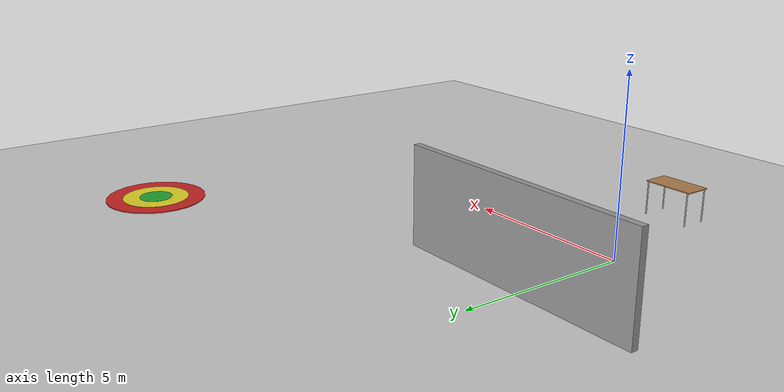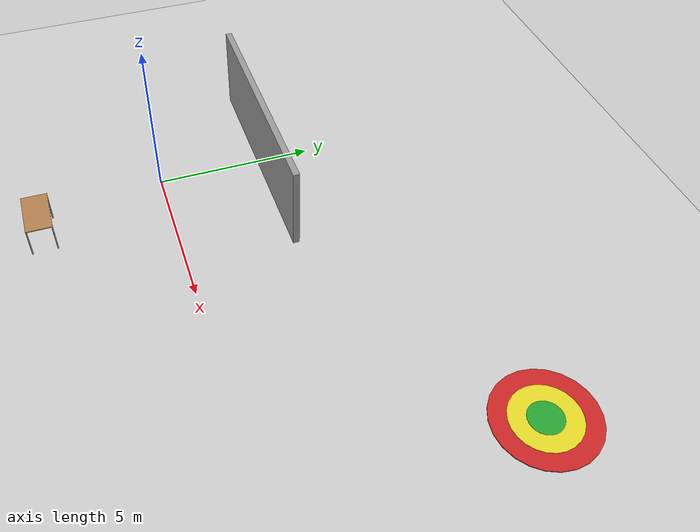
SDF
<sdf version="1.7">
 <world name="default">
  <light name="sun" type="directional">
   <pose>0 0 10 0 -0 0</pose>
   <diffuse>0.8 0.8 0.8 1</diffuse>
   <specular>0.2 0.2 0.2 1</specular>
   <attenuation>
    <range>1000</range>
    <constant>0.9</constant>
    <linear>0.01</linear>
    <quadratic>0.001</quadratic>
   </attenuation>
   <direction>-0.5 0.1 -0.9</direction>
   <spot><inner_angle>0</inner_angle><outer_angle>0</outer_angle><falloff>0</falloff></spot>
  </light>
  <model name="ground_plane">
   <static>1</static>
   <link name="link">
    <collision name="collision">
     <geometry><plane><normal>0 0 1</normal><size>100 100</size></plane></geometry>
     <surface>
      <contact><collide_bitmask>65535</collide_bitmask></contact>
      <friction><ode><mu>100</mu><mu2>50</mu2></ode></friction>
     </surface>
    </collision>
    <visual name="visual">
     <cast_shadows>0</cast_shadows>
     <geometry><plane><normal>0 0 1</normal><size>100 100</size></plane></geometry>
     <material>
      <script><uri>file://media/materials/scripts/gazebo.material</uri><name>Gazebo/Grey</name></script>
     </material>
    </visual>
   </link>
  </model>
  <gravity>0 0 -9.8</gravity>
  <magnetic_field>6e-06 2.3e-05 -4.2e-05</magnetic_field>
  <atmosphere type="adiabatic"/>
  <physics type="ode">
   <max_step_size>0.001</max_step_size>
   <real_time_factor>1</real_time_factor>
   <real_time_update_rate>1000</real_time_update_rate>
  </physics>
  <scene>
   <ambient>0.4 0.4 0.4 1</ambient>
   <sky><material>Gazebo/CloudySky</material></sky>
   <background>0.7 0.7 0.7 1</background>
   <shadows>1</shadows>
  </scene>
  <spherical_coordinates>
   <surface_model>EARTH_WGS84</surface_model>
   <latitude_deg>0</latitude_deg>
   <longitude_deg>0</longitude_deg>
   <elevation>0</elevation>
   <heading_deg>0</heading_deg>
  </spherical_coordinates>
  <model name="Target">
   <static>1</static>
   <link name="green">
    <visual name="visual">
     <geometry><cylinder><radius>0.5</radius><length>0.05</length></cylinder></geometry>
     <material>
      <script><uri>file://media/materials/scripts/gazebo.material</uri><name>Gazebo/Green</name></script>
      <ambient>1 1 1 1</ambient>
     </material>
     <cast_shadows>0</cast_shadows>
    </visual>
   </link>
   <link name="yellow">
    <visual name="visual">
     <geometry><cylinder><radius>1</radius><length>0.04</length></cylinder></geometry>
     <material>
      <script><uri>file://media/materials/scripts/gazebo.material</uri><name>Gazebo/Yellow</name></script>
      <ambient>1 1 1 1</ambient>
     </material>
     <cast_shadows>0</cast_shadows>
    </visual>
   </link>
   <link name="red">
    <visual name="visual">
     <geometry><cylinder><radius>1.5</radius><length>0.03</length></cylinder></geometry>
     <material>
      <script><uri>file://media/materials/scripts/gazebo.material</uri><name>Gazebo/Red</name></script>
      <ambient>1 1 1 1</ambient>
     </material>
     <cast_shadows>0</cast_shadows>
    </visual>
   </link>
   <pose>11.75 7.567 0 0 -0 0</pose>
  </model>
  <model name="grey_wall">
   <static>1</static>
   <link name="link">
    <pose>0 0 1.4 0 -0 0</pose>
    <collision name="collision"><geometry><box><size>7.5 0.2 2.8</size></box></geometry></collision>
    <visual name="visual">
     <cast_shadows>0</cast_shadows>
     <geometry><box><size>7.5 0.2 2.8</size></box></geometry>
     <material>
      <script>
       <uri>model://grey_wall/materials/scripts</uri>
       <uri>model://grey_wall/materials/textures</uri>
       <name>vrc/grey_wall</name>
      </script>
     </material>
    </visual>
   </link>
   <pose>0.202912 3.40056 0 0 -0 0</pose>
  </model>
  <model name="table">
   <static>1</static>
   <link name="link">
    <collision name="surface">
     <pose>0 0 1 0 -0 0</pose>
     <geometry><box><size>1.5 0.8 0.03</size></box></geometry>
     <surface><friction><ode><mu>0.6</mu><mu2>0.6</mu2></ode></friction></surface>
    </collision>
    <visual name="visual1">
     <pose>0 0 1 0 -0 0</pose>
     <geometry><box><size>1.5 0.8 0.03</size></box></geometry>
     <material>
      <script><uri>file://media/materials/scripts/gazebo.material</uri><name>Gazebo/Wood</name></script>
     </material>
    </visual>
    <collision name="front_left_leg">
     <pose>0.68 0.38 0.5 0 -0 0</pose>
     <geometry><cylinder><radius>0.02</radius><length>1</length></cylinder></geometry>
    </collision>
    <visual name="front_left_leg">
     <pose>0.68 0.38 0.5 0 -0 0</pose>
     <geometry><cylinder><radius>0.02</radius><length>1</length></cylinder></geometry>
     <material>
      <script><uri>file://media/materials/scripts/gazebo.material</uri><name>Gazebo/Grey</name></script>
     </material>
    </visual>
    <collision name="front_right_leg">
     <pose>0.68 -0.38 0.5 0 -0 0</pose>
     <geometry><cylinder><radius>0.02</radius><length>1</length></cylinder></geometry>
    </collision>
    <visual name="front_right_leg">
     <pose>0.68 -0.38 0.5 0 -0 0</pose>
     <geometry><cylinder><radius>0.02</radius><length>1</length></cylinder></geometry>
     <material>
      <script><uri>file://media/materials/scripts/gazebo.material</uri><name>Gazebo/Grey</name></script>
     </material>
    </visual>
    <collision name="back_right_leg">
     <pose>-0.68 -0.38 0.5 0 -0 0</pose>
     <geometry><cylinder><radius>0.02</radius><length>1</length></cylinder></geometry>
    </collision>
    <visual name="back_right_leg">
     <pose>-0.68 -0.38 0.5 0 -0 0</pose>
     <geometry><cylinder><radius>0.02</radius><length>1</length></cylinder></geometry>
     <material>
      <script><uri>file://media/materials/scripts/gazebo.material</uri><name>Gazebo/Grey</name></script>
     </material>
    </visual>
    <collision name="back_left_leg">
     <pose>-0.68 0.38 0.5 0 -0 0</pose>
     <geometry><cylinder><radius>0.02</radius><length>1</length></cylinder></geometry>
    </collision>
    <visual name="back_left_leg">
     <pose>-0.68 0.38 0.5 0 -0 0</pose>
     <geometry><cylinder><radius>0.02</radius><length>1</length></cylinder></geometry>
     <material>
      <script><uri>file://media/materials/scripts/gazebo.material</uri><name>Gazebo/Grey</name></script>
     </material>
    </visual>
   </link>
   <pose>1.27419 -3.95166 0 0 -0 0</pose>
  </model>
 </world>
</sdf>
